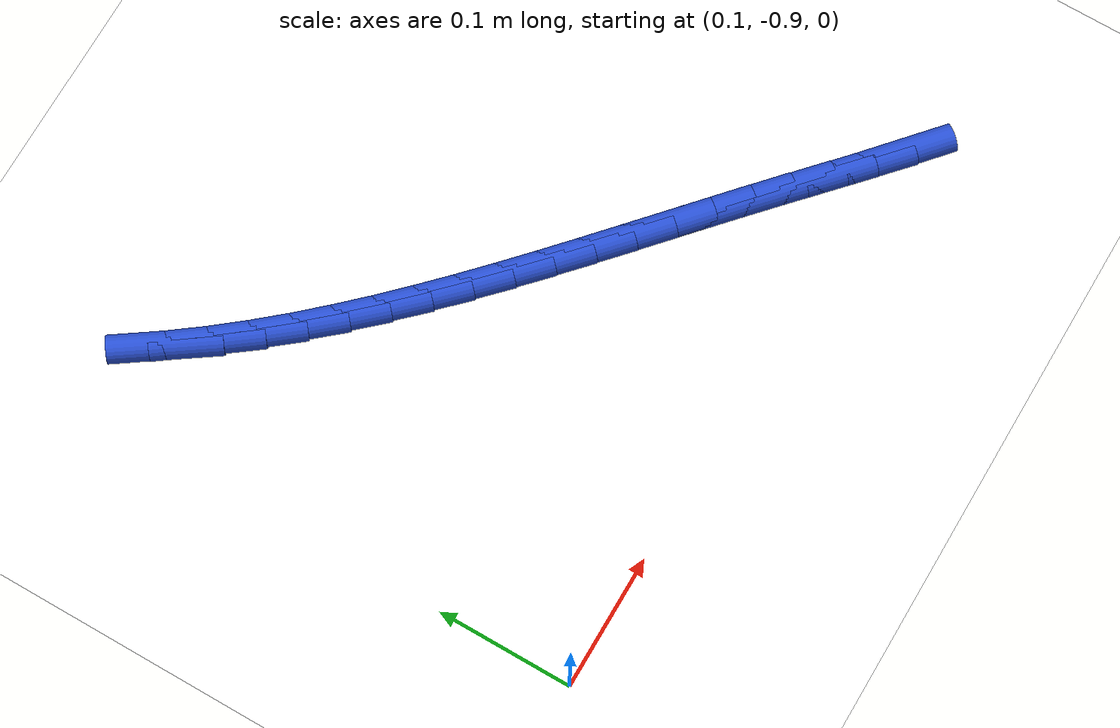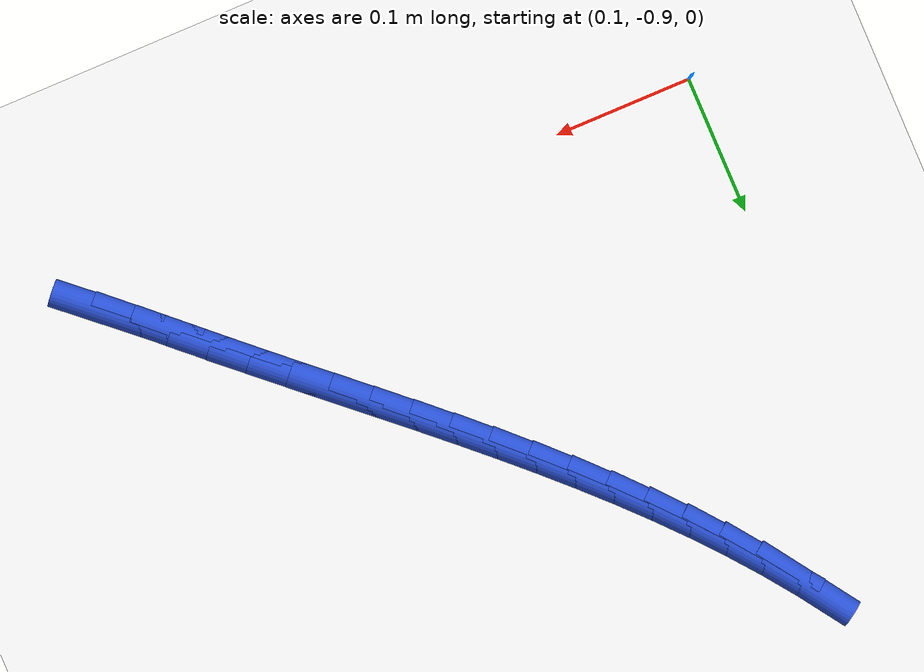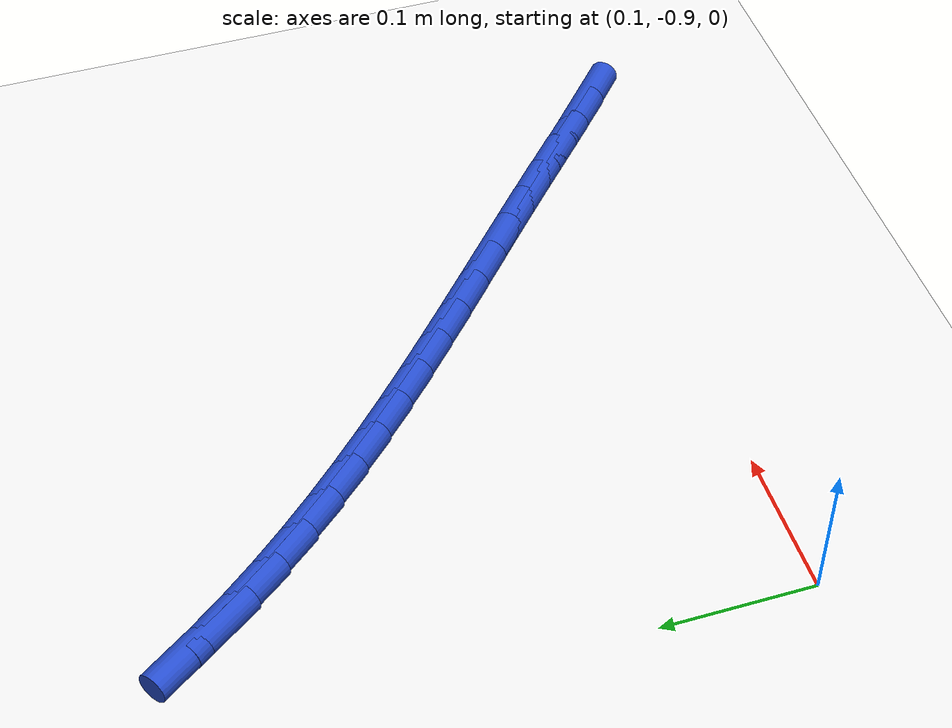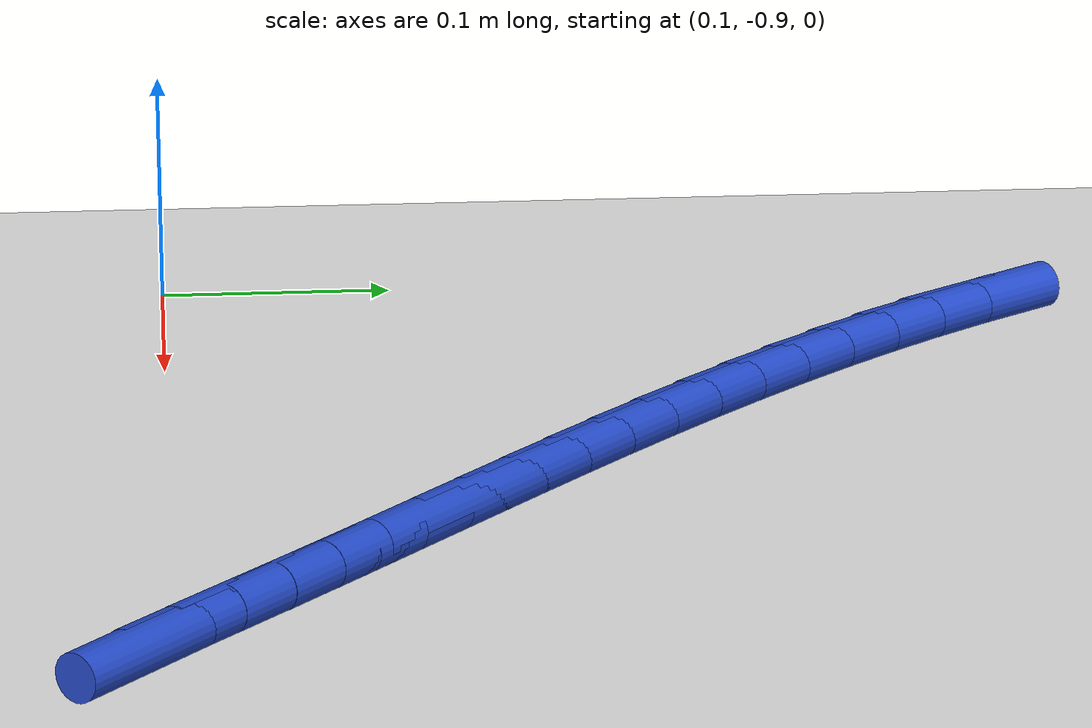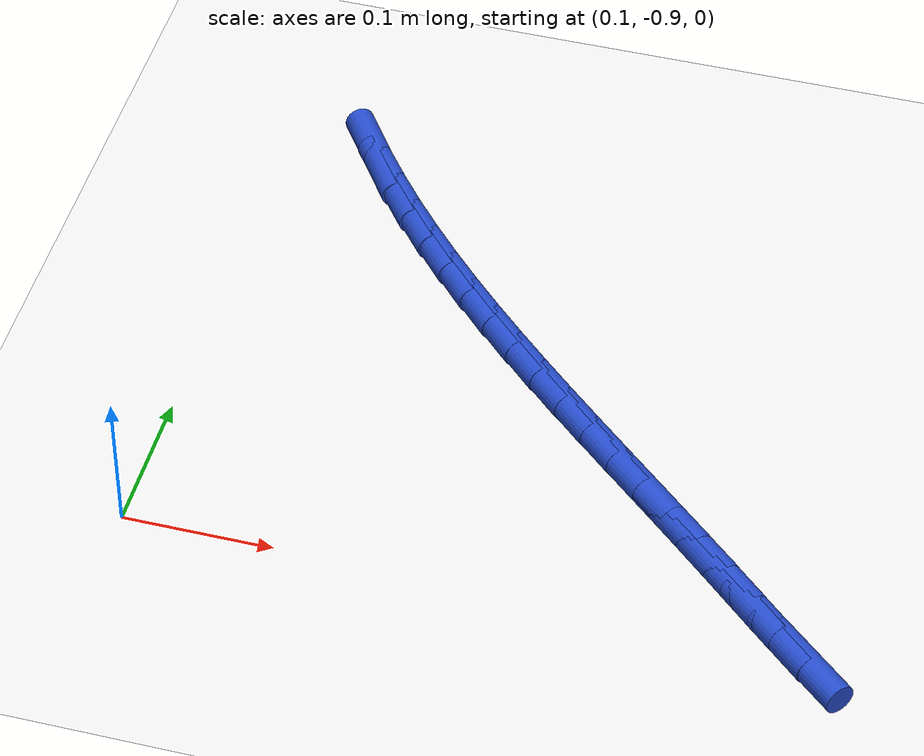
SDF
<sdf version="1.6">
 <world name="default">
  <model name="ground_plane">
   <static>1</static>
   <link name="link">
    <collision name="collision">
     <geometry><plane><normal>0 0 1</normal><size>100 100</size></plane></geometry>
     <surface><friction><ode><mu>100</mu><mu2>50</mu2></ode></friction></surface>
    </collision>
    <visual name="visual">
     <cast_shadows>0</cast_shadows>
     <geometry><plane><normal>0 0 1</normal><size>100 100</size></plane></geometry>
     <material>
      <script><uri>file://media/materials/scripts/gazebo.material</uri><name>Gazebo/WhiteGlow</name></script>
     </material>
    </visual>
   </link>
  </model>
  <model name="line">
   <link name="link_192">
    <pose>0.5356377235607606 -0.9096972721886742 0.01 0 1.57 -0.718545563235063</pose>
    <collision name="collision">
     <geometry><cylinder><radius>0.01</radius><length>0.08</length></cylinder></geometry>
    </collision>
    <visual name="visual">
     <material>
      <script><name>Gazebo/Blue</name><uri>file://media/materials/scripts/gazebo.material</uri></script>
     </material>
     <geometry><cylinder><radius>0.01</radius><length>0.08</length></cylinder></geometry>
    </visual>
   </link>
   <link name="link_193">
    <pose>0.5139035003498266 -0.890690739264169 0.01 0 1.57 -0.7342380085685174</pose>
    <collision name="collision">
     <geometry><cylinder><radius>0.01</radius><length>0.08</length></cylinder></geometry>
    </collision>
    <visual name="visual">
     <material>
      <script><name>Gazebo/Blue</name><uri>file://media/materials/scripts/gazebo.material</uri></script>
     </material>
     <geometry><cylinder><radius>0.01</radius><length>0.08</length></cylinder></geometry>
    </visual>
   </link>
   <link name="link_194">
    <pose>0.49240616024637474 -0.8712876965736881 0.01 0 1.57 -0.7387105481506278</pose>
    <collision name="collision">
     <geometry><cylinder><radius>0.01</radius><length>0.08</length></cylinder></geometry>
    </collision>
    <visual name="visual">
     <material>
      <script><name>Gazebo/Blue</name><uri>file://media/materials/scripts/gazebo.material</uri></script>
     </material>
     <geometry><cylinder><radius>0.01</radius><length>0.08</length></cylinder></geometry>
    </visual>
   </link>
   <link name="link_195">
    <pose>0.47093946907332446 -0.8517373840866953 0.01 0 1.57 -0.7333382860047749</pose>
    <collision name="collision">
     <geometry><cylinder><radius>0.01</radius><length>0.08</length></cylinder></geometry>
    </collision>
    <visual name="visual">
     <material>
      <script><name>Gazebo/Blue</name><uri>file://media/materials/scripts/gazebo.material</uri></script>
     </material>
     <geometry><cylinder><radius>0.01</radius><length>0.08</length></cylinder></geometry>
    </visual>
   </link>
   <link name="link_196">
    <pose>0.44932246529784436 -0.8322616005313379 0.01 0 1.57 -0.7271665565916997</pose>
    <collision name="collision">
     <geometry><cylinder><radius>0.01</radius><length>0.08</length></cylinder></geometry>
    </collision>
    <visual name="visual">
     <material>
      <script><name>Gazebo/Blue</name><uri>file://media/materials/scripts/gazebo.material</uri></script>
     </material>
     <geometry><cylinder><radius>0.01</radius><length>0.08</length></cylinder></geometry>
    </visual>
   </link>
   <link name="link_197">
    <pose>0.4275517153403547 -0.8128893833497901 0.01 0 1.57 -0.7240382317010253</pose>
    <collision name="collision">
     <geometry><cylinder><radius>0.01</radius><length>0.08</length></cylinder></geometry>
    </collision>
    <visual name="visual">
     <material>
      <script><name>Gazebo/Blue</name><uri>file://media/materials/scripts/gazebo.material</uri></script>
     </material>
     <geometry><cylinder><radius>0.01</radius><length>0.08</length></cylinder></geometry>
    </visual>
   </link>
   <link name="link_198">
    <pose>0.40569987249390493 -0.7935671542431861 0.01 0 1.57 -0.7239534928343664</pose>
    <collision name="collision">
     <geometry><cylinder><radius>0.01</radius><length>0.08</length></cylinder></geometry>
    </collision>
    <visual name="visual">
     <material>
      <script><name>Gazebo/Blue</name><uri>file://media/materials/scripts/gazebo.material</uri></script>
     </material>
     <geometry><cylinder><radius>0.01</radius><length>0.08</length></cylinder></geometry>
    </visual>
   </link>
   <link name="link_199">
    <pose>0.38383988035037414 -0.774241019703843 0.01 0 1.57 -0.7269094562289571</pose>
    <collision name="collision">
     <geometry><cylinder><radius>0.01</radius><length>0.08</length></cylinder></geometry>
    </collision>
    <visual name="visual">
     <material>
      <script><name>Gazebo/Blue</name><uri>file://media/materials/scripts/gazebo.material</uri></script>
     </material>
     <geometry><cylinder><radius>0.01</radius><length>0.08</length></cylinder></geometry>
    </visual>
   </link>
   <link name="link_200">
    <pose>0.36204468250164085 -0.7548570862240771 0.01 0 1.57 -0.7329148877669037</pose>
    <collision name="collision">
     <geometry><cylinder><radius>0.01</radius><length>0.08</length></cylinder></geometry>
    </collision>
    <visual name="visual">
     <material>
      <script><name>Gazebo/Blue</name><uri>file://media/materials/scripts/gazebo.material</uri></script>
     </material>
     <geometry><cylinder><radius>0.01</radius><length>0.08</length></cylinder></geometry>
    </visual>
   </link>
   <link name="link_201">
    <pose>0.34038722253958414 -0.7353614602962059 0.01 0 1.57 -0.7419894509087865</pose>
    <collision name="collision">
     <geometry><cylinder><radius>0.01</radius><length>0.08</length></cylinder></geometry>
    </collision>
    <visual name="visual">
     <material>
      <script><name>Gazebo/Blue</name><uri>file://media/materials/scripts/gazebo.material</uri></script>
     </material>
     <geometry><cylinder><radius>0.01</radius><length>0.08</length></cylinder></geometry>
    </visual>
   </link>
   <link name="link_202">
    <pose>0.31894044405608424 -0.7157002484125478 0.01 0 1.57 -0.7541621777697528</pose>
    <collision name="collision">
     <geometry><cylinder><radius>0.01</radius><length>0.08</length></cylinder></geometry>
    </collision>
    <visual name="visual">
     <material>
      <script><name>Gazebo/Blue</name><uri>file://media/materials/scripts/gazebo.material</uri></script>
     </material>
     <geometry><cylinder><radius>0.01</radius><length>0.08</length></cylinder></geometry>
    </visual>
   </link>
   <link name="link_203">
    <pose>0.2977772906430196 -0.6958195570654195 0.01 0 1.57 -0.7694690886102576</pose>
    <collision name="collision">
     <geometry><cylinder><radius>0.01</radius><length>0.08</length></cylinder></geometry>
    </collision>
    <visual name="visual">
     <material>
      <script><name>Gazebo/Blue</name><uri>file://media/materials/scripts/gazebo.material</uri></script>
     </material>
     <geometry><cylinder><radius>0.01</radius><length>0.08</length></cylinder></geometry>
    </visual>
   </link>
   <link name="link_204">
    <pose>0.27697070589226963 -0.6756654927471384 0.01 0 1.57 -0.7879498557269621</pose>
    <collision name="collision">
     <geometry><cylinder><radius>0.01</radius><length>0.08</length></cylinder></geometry>
    </collision>
    <visual name="visual">
     <material>
      <script><name>Gazebo/Blue</name><uri>file://media/materials/scripts/gazebo.material</uri></script>
     </material>
     <geometry><cylinder><radius>0.01</radius><length>0.08</length></cylinder></geometry>
    </visual>
   </link>
   <link name="link_205">
    <pose>0.2565936333957133 -0.6551841619500214 0.01 0 1.57 -0.8096433938526886</pose>
    <collision name="collision">
     <geometry><cylinder><radius>0.01</radius><length>0.08</length></cylinder></geometry>
    </collision>
    <visual name="visual">
     <material>
      <script><name>Gazebo/Blue</name><uri>file://media/materials/scripts/gazebo.material</uri></script>
     </material>
     <geometry><cylinder><radius>0.01</radius><length>0.08</length></cylinder></geometry>
    </visual>
   </link>
   <link name="link_206">
    <pose>0.23671901674522927 -0.6343216711663855 0.01 0 1.57 -0.834582269801784</pose>
    <collision name="collision">
     <geometry><cylinder><radius>0.01</radius><length>0.08</length></cylinder></geometry>
    </collision>
    <visual name="visual">
     <material>
      <script><name>Gazebo/Blue</name><uri>file://media/materials/scripts/gazebo.material</uri></script>
     </material>
     <geometry><cylinder><radius>0.01</radius><length>0.08</length></cylinder></geometry>
    </visual>
   </link>
   <link name="link_207">
    <pose>0.21741979953269788 -0.6130241268885493 0.01 0 1.57 -0.8627858708526329</pose>
    <collision name="collision">
     <geometry><cylinder><radius>0.01</radius><length>0.08</length></cylinder></geometry>
    </collision>
    <visual name="visual">
     <material>
      <script><name>Gazebo/Blue</name><uri>file://media/materials/scripts/gazebo.material</uri></script>
     </material>
     <geometry><cylinder><radius>0.01</radius><length>0.08</length></cylinder></geometry>
    </visual>
   </link>
   <link name="link_208">
    <pose>0.19876892534999763 -0.5912376356088294 0.01 0 1.57 -0.8942523672399244</pose>
    <collision name="collision">
     <geometry><cylinder><radius>0.01</radius><length>0.08</length></cylinder></geometry>
    </collision>
    <visual name="visual">
     <material>
      <script><name>Gazebo/Blue</name><uri>file://media/materials/scripts/gazebo.material</uri></script>
     </material>
     <geometry><cylinder><radius>0.01</radius><length>0.08</length></cylinder></geometry>
    </visual>
   </link>
   <link name="link_209">
    <pose>0.1808393377890079 -0.5689083038195432 0.01 0 1.57 -0.9289496604535532</pose>
    <collision name="collision">
     <geometry><cylinder><radius>0.01</radius><length>0.08</length></cylinder></geometry>
    </collision>
    <visual name="visual">
     <material>
      <script><name>Gazebo/Blue</name><uri>file://media/materials/scripts/gazebo.material</uri></script>
     </material>
     <geometry><cylinder><radius>0.01</radius><length>0.08</length></cylinder></geometry>
    </visual>
   </link>
   <link name="link_210">
    <pose>0.16370398044160725 -0.5459822380130073 0.01 0 1.57 -0.9668057298648053</pose>
    <collision name="collision">
     <geometry><cylinder><radius>0.01</radius><length>0.08</length></cylinder></geometry>
    </collision>
    <visual name="visual">
     <material>
      <script><name>Gazebo/Blue</name><uri>file://media/materials/scripts/gazebo.material</uri></script>
     </material>
     <geometry><cylinder><radius>0.01</radius><length>0.08</length></cylinder></geometry>
    </visual>
   </link>
  </model>
 </world>
</sdf>
